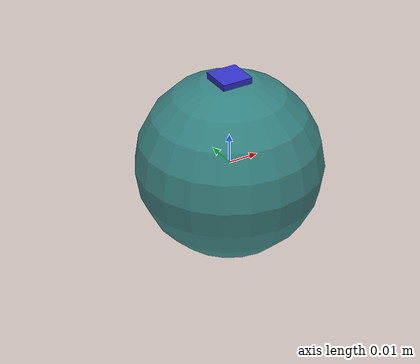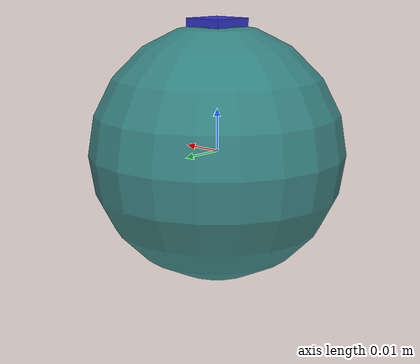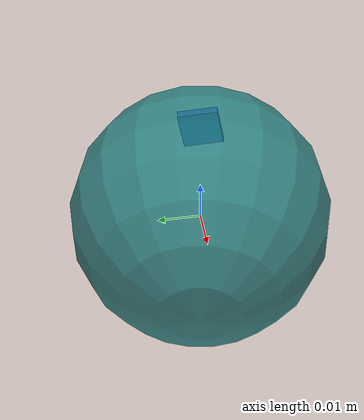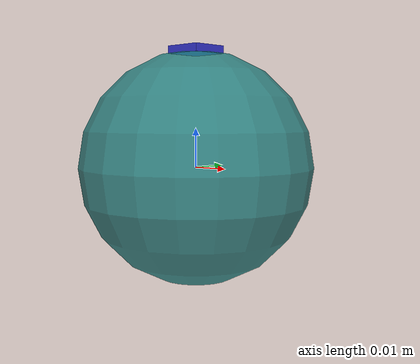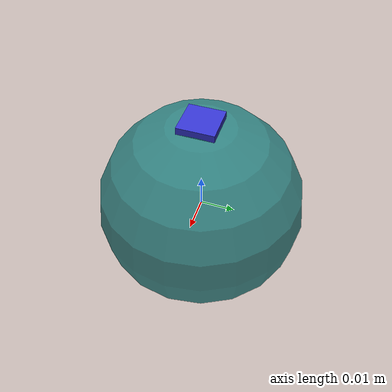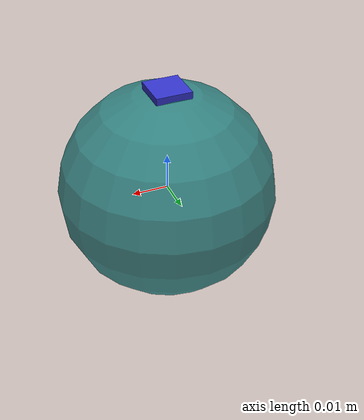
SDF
<?xml version="1.0"?>
<sdf version="1.7">
  <model name="sphere_r0.1m">
    <link name="sphere">
      <inertial>
        <mass>1.0</mass>
        <inertia>
          <ixx>0.00036</ixx>
          <ixy>0</ixy>
          <ixz>0</ixz>
          <iyy>0.00036</iyy>
          <iyz>0</iyz>
          <izz>0.00036</izz>
        </inertia>
      </inertial>

      <visual name="visual">
        <geometry>
          <sphere>
            <radius>0.03</radius>
          </sphere>
        </geometry>
        <material>
          <diffuse>0.1 0.5 0.5 0.8</diffuse>
        </material>
      </visual>

      <visual name="visual_2">
        <pose> 0 0 0.03 0 0 0 </pose>
        <geometry>
          <box>
           <size>0.01 0.01 0.002 </size>
          </box>
        </geometry>
        <material>
          <diffuse>0.2 0.2 0.8 0.9</diffuse>
        </material>
      </visual>

      <collision name="collision">
        <geometry>
          <sphere>
            <radius>0.03</radius>
          </sphere>
        </geometry>
        <surface>
          <friction>
            <ode>
              <mu>1.0</mu>
              <mu2>1.0</mu2>
            </ode>
          </friction>
        </surface>
      </collision>
    </link>
  </model>
</sdf>
